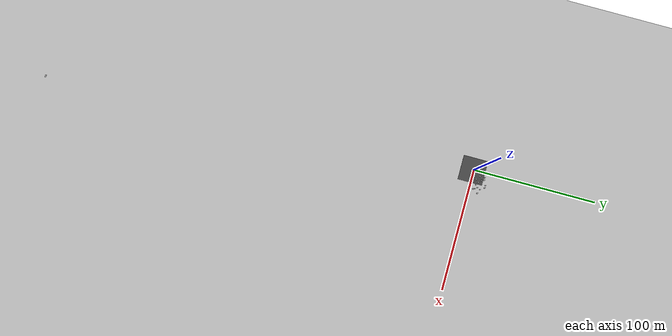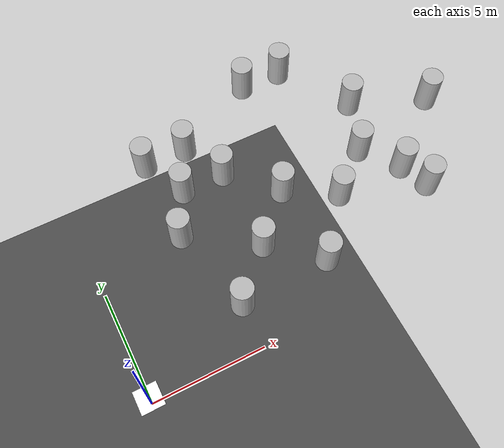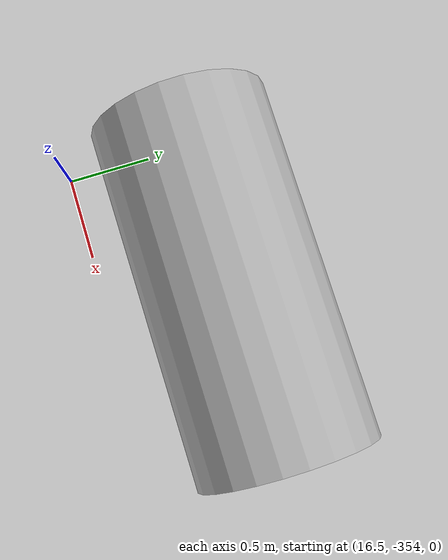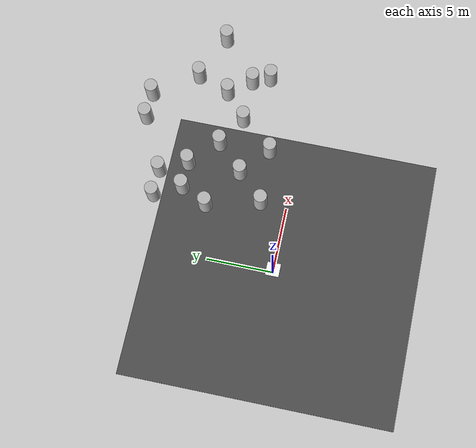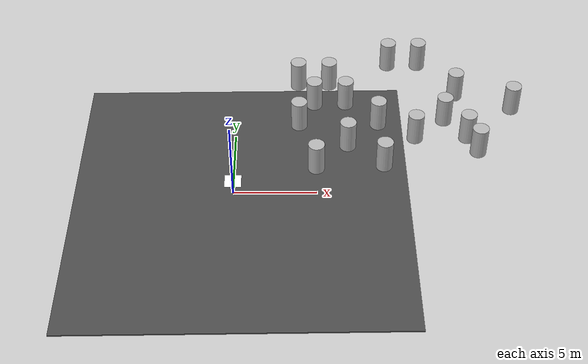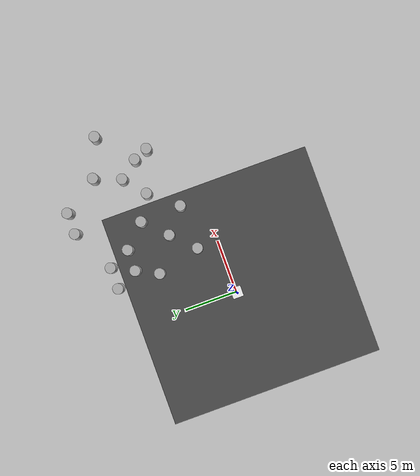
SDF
<sdf version="1.6">
 <world name="default">
  <model name="ground_plane">
   <static>1</static>
   <link name="link">
    <collision name="collision">
     <geometry><plane><normal>0 0 1</normal><size>100 100</size></plane></geometry>
     <surface><friction><ode><mu>100</mu><mu2>50</mu2></ode></friction></surface>
    </collision>
    <visual name="visual">
     <cast_shadows>0</cast_shadows>
     <geometry><plane><normal>0 0 1</normal><size>100 100</size></plane></geometry>
     <material>
      <script><uri>file://media/materials/scripts/gazebo.material</uri><name>Gazebo/Grey</name></script>
     </material>
    </visual>
   </link>
  </model>
  <physics name="default_physics" default="0" type="ode">
   <ode>
    <solver>
     <type>quick</type>
     <iters>10</iters>
     <sor>1.3</sor>
     <use_dynamic_moi_rescaling>0</use_dynamic_moi_rescaling>
    </solver>
    <constraints>
     <cfm>0</cfm>
     <erp>0.2</erp>
     <contact_max_correcting_vel>100</contact_max_correcting_vel>
     <contact_surface_layer>0.001</contact_surface_layer>
    </constraints>
   </ode>
   <max_step_size>0.004</max_step_size>
   <real_time_factor>1</real_time_factor>
   <real_time_update_rate>250</real_time_update_rate>
  </physics>
  <gravity>0 0 -9.8066</gravity>
  <magnetic_field>6e-06 2.3e-05 -4.2e-05</magnetic_field>
  <atmosphere type="adiabatic"/>
  <scene><ambient>0.4 0.4 0.4 1</ambient><background>0.7 0.7 0.7 1</background><shadows>1</shadows></scene>
  <spherical_coordinates>
   <surface_model>EARTH_WGS84</surface_model>
   <latitude_deg>0</latitude_deg>
   <longitude_deg>0</longitude_deg>
   <elevation>0</elevation>
   <heading_deg>0</heading_deg>
  </spherical_coordinates>
  <light name="user_directional_light_0" type="directional">
   <pose>0.540288 -0.667921 1 0 -0 0</pose>
   <diffuse>0.5 0.5 0.5 1</diffuse>
   <specular>0.1 0.1 0.1 1</specular>
   <direction>0.1 0.1 -0.9</direction>
   <attenuation>
    <range>20</range>
    <constant>0.5</constant>
    <linear>0.01</linear>
    <quadratic>0.001</quadratic>
   </attenuation>
  </light>
  <model name="asphalt_plane">
   <static>1</static>
   <link name="link">
    <collision name="collision"><geometry><box><size>20 19.9999 0.1</size></box></geometry></collision>
    <visual name="visual">
     <cast_shadows>0</cast_shadows>
     <geometry><box><size>20 19.9999 0.1</size></box></geometry>
     <material>
      <script>
       <uri>model://asphalt_plane/materials/scripts</uri>
       <uri>model://asphalt_plane/materials/textures</uri>
       <name>vrc/asphalt</name>
      </script>
     </material>
    </visual>
   </link>
   <pose>0.497562 -0.550879 0 0 -0 0</pose>
  </model>
  <model name="cylinder">
   <pose>6.99967 3.99982 1.05 -1.2e-05 1e-06 -0.000679</pose>
   <link name="link">
    <collision name="collision">
     <geometry><cylinder><radius>0.5</radius><length>2</length></cylinder></geometry>
    </collision>
    <visual name="visual">
     <geometry><cylinder><radius>0.5</radius><length>2</length></cylinder></geometry>
    </visual>
    <inertial>
     <inertia><ixx>1</ixx><ixy>0</ixy><ixz>0</ixz><iyy>1</iyy><iyz>0</iyz><izz>1</izz></inertia>
     <mass>1</mass>
    </inertial>
   </link>
  </model>
  <model name="cylinder1">
   <pose>6.99971 8.00004 1.05001 1.4e-05 2e-06 -0.001006</pose>
   <link name="link">
    <collision name="collision">
     <geometry><cylinder><radius>0.5</radius><length>2</length></cylinder></geometry>
    </collision>
    <visual name="visual">
     <geometry><cylinder><radius>0.5</radius><length>2</length></cylinder></geometry>
    </visual>
    <inertial>
     <inertia><ixx>1</ixx><ixy>0</ixy><ixz>0</ixz><iyy>1</iyy><iyz>0</iyz><izz>1</izz></inertia>
     <mass>1</mass>
    </inertial>
   </link>
  </model>
  <model name="cylinder2">
   <pose>4.9997 8.00005 1.04985 -1e-05 2.2e-05 -0.000999</pose>
   <link name="link">
    <collision name="collision">
     <geometry><cylinder><radius>0.5</radius><length>2</length></cylinder></geometry>
    </collision>
    <visual name="visual">
     <geometry><cylinder><radius>0.5</radius><length>2</length></cylinder></geometry>
    </visual>
    <inertial>
     <inertia><ixx>1</ixx><ixy>0</ixy><ixz>0</ixz><iyy>1</iyy><iyz>0</iyz><izz>1</izz></inertia>
     <mass>1</mass>
    </inertial>
   </link>
  </model>
  <model name="cylinder3">
   <pose>4.99954 1.99984 1.04984 -7e-06 1.4e-05 -0.000545</pose>
   <link name="link">
    <collision name="collision">
     <geometry><cylinder><radius>0.5</radius><length>2</length></cylinder></geometry>
    </collision>
    <visual name="visual">
     <geometry><cylinder><radius>0.5</radius><length>2</length></cylinder></geometry>
    </visual>
    <inertial>
     <inertia><ixx>1</ixx><ixy>0</ixy><ixz>0</ixz><iyy>1</iyy><iyz>0</iyz><izz>1</izz></inertia>
     <mass>1</mass>
    </inertial>
   </link>
  </model>
  <model name="cylinder4">
   <pose>3.99951 5.9999 1.05001 1.9e-05 -5e-06 -0.000532</pose>
   <link name="link">
    <collision name="collision">
     <geometry><cylinder><radius>0.5</radius><length>2</length></cylinder></geometry>
    </collision>
    <visual name="visual">
     <geometry><cylinder><radius>0.5</radius><length>2</length></cylinder></geometry>
    </visual>
    <inertial>
     <inertia><ixx>1</ixx><ixy>0</ixy><ixz>0</ixz><iyy>1</iyy><iyz>0</iyz><izz>1</izz></inertia>
     <mass>1</mass>
    </inertial>
   </link>
  </model>
  <model name="cylinder5">
   <pose>8.99967 5.99978 1.04989 1.3e-05 -1e-06 -0.001061</pose>
   <link name="link">
    <collision name="collision">
     <geometry><cylinder><radius>0.5</radius><length>2</length></cylinder></geometry>
    </collision>
    <visual name="visual">
     <geometry><cylinder><radius>0.5</radius><length>2</length></cylinder></geometry>
    </visual>
    <inertial>
     <inertia><ixx>1</ixx><ixy>0</ixy><ixz>0</ixz><iyy>1</iyy><iyz>0</iyz><izz>1</izz></inertia>
     <mass>1</mass>
    </inertial>
   </link>
  </model>
  <model name="cylinder6">
   <pose>3.99977 10.0001 1.05001 1.1e-05 1e-06 -0.001344</pose>
   <link name="link">
    <collision name="collision">
     <geometry><cylinder><radius>0.5</radius><length>2</length></cylinder></geometry>
    </collision>
    <visual name="visual">
     <geometry><cylinder><radius>0.5</radius><length>2</length></cylinder></geometry>
    </visual>
    <inertial>
     <inertia><ixx>1</ixx><ixy>0</ixy><ixz>0</ixz><iyy>1</iyy><iyz>0</iyz><izz>1</izz></inertia>
     <mass>1</mass>
    </inertial>
   </link>
  </model>
  <model name="cylinder7">
   <pose>5.99974 10.0001 1.04989 7e-06 -1e-06 -0.00114</pose>
   <link name="link">
    <collision name="collision">
     <geometry><cylinder><radius>0.5</radius><length>2</length></cylinder></geometry>
    </collision>
    <visual name="visual">
     <geometry><cylinder><radius>0.5</radius><length>2</length></cylinder></geometry>
    </visual>
    <inertial>
     <inertia><ixx>1</ixx><ixy>0</ixy><ixz>0</ixz><iyy>1</iyy><iyz>0</iyz><izz>1</izz></inertia>
     <mass>1</mass>
    </inertial>
   </link>
  </model>
  <model name="cylinder8">
   <pose>10 12 1.0499 1.4e-05 -2.2e-05 -0.002577</pose>
   <link name="link">
    <collision name="collision">
     <geometry><cylinder><radius>0.5</radius><length>2</length></cylinder></geometry>
    </collision>
    <visual name="visual">
     <geometry><cylinder><radius>0.5</radius><length>2</length></cylinder></geometry>
    </visual>
    <inertial>
     <inertia><ixx>1</ixx><ixy>0</ixy><ixz>0</ixz><iyy>1</iyy><iyz>0</iyz><izz>1</izz></inertia>
     <mass>1</mass>
    </inertial>
   </link>
  </model>
  <model name="cylinder9">
   <pose>12 11.9999 1.0499 1.1e-05 -2e-05 -0.002524</pose>
   <link name="link">
    <collision name="collision">
     <geometry><cylinder><radius>0.5</radius><length>2</length></cylinder></geometry>
    </collision>
    <visual name="visual">
     <geometry><cylinder><radius>0.5</radius><length>2</length></cylinder></geometry>
    </visual>
    <inertial>
     <inertia><ixx>1</ixx><ixy>0</ixy><ixz>0</ixz><iyy>1</iyy><iyz>0</iyz><izz>1</izz></inertia>
     <mass>1</mass>
    </inertial>
   </link>
  </model>
  <model name="aruco_visual_marker_0">
   <pose>0 0 1 0 -0 0</pose>
   <link name="marker">
    <pose>0 0 0 0 -0 3.14</pose>
    <visual name="visual">
     <geometry><box><size>1 1 1e-05</size></box></geometry>
     <material>
      <script>
       <uri>model://fractal_marker/materials/scripts</uri>
       <uri>model://fractal_marker/materials/textures</uri>
       <name>ArucoVisualMarker0</name>
      </script>
      <ambient>1 1 1 1</ambient>
      <diffuse>1 1 1 1</diffuse>
      <specular>0 0 0 1</specular>
      <emissive>1 1 1 0</emissive>
      <shader type="vertex"><normal_map>__default__</normal_map></shader>
     </material>
    </visual>
    <collision name="collision"><geometry><box><size>1 1 1e-05</size></box></geometry></collision>
   </link>
   <static>1</static>
  </model>
  <light name="user_directional_light_1" type="directional">
   <pose>18.7483 28.6467 1 0 -0 0</pose>
   <diffuse>0.5 0.5 0.5 1</diffuse>
   <specular>0.1 0.1 0.1 1</specular>
   <direction>0.1 0.1 -0.9</direction>
   <attenuation>
    <range>20</range>
    <constant>0.5</constant>
    <linear>0.01</linear>
    <quadratic>0.001</quadratic>
   </attenuation>
  </light>
  <audio><device>default</device></audio>
  <model name="cylinder5_clone">
   <pose>14.1719 8.75656 1.0499 1.9e-05 -1.1e-05 -0.002272</pose>
   <link name="link">
    <collision name="collision">
     <geometry><cylinder><radius>0.5</radius><length>2</length></cylinder></geometry>
    </collision>
    <visual name="visual">
     <geometry><cylinder><radius>0.5</radius><length>2</length></cylinder></geometry>
    </visual>
    <inertial>
     <inertia><ixx>1</ixx><ixy>0</ixy><ixz>0</ixz><iyy>1</iyy><iyz>0</iyz><izz>1</izz></inertia>
     <mass>1</mass>
    </inertial>
   </link>
  </model>
  <model name="cylinder5_clone_0">
   <pose>17.458 -353.264 0.499928 1.57072 0.102844 1.57823</pose>
   <link name="link">
    <collision name="collision">
     <geometry><cylinder><radius>0.5</radius><length>2</length></cylinder></geometry>
    </collision>
    <visual name="visual">
     <geometry><cylinder><radius>0.5</radius><length>2</length></cylinder></geometry>
    </visual>
    <inertial>
     <inertia><ixx>1</ixx><ixy>0</ixy><ixz>0</ixz><iyy>1</iyy><iyz>0</iyz><izz>1</izz></inertia>
     <mass>1</mass>
    </inertial>
   </link>
  </model>
  <model name="cylinder5_clone_1">
   <pose>11.2506 4.64444 1.0499 -7e-06 -1.8e-05 -0.00254</pose>
   <link name="link">
    <collision name="collision">
     <geometry><cylinder><radius>0.5</radius><length>2</length></cylinder></geometry>
    </collision>
    <visual name="visual">
     <geometry><cylinder><radius>0.5</radius><length>2</length></cylinder></geometry>
    </visual>
    <inertial>
     <inertia><ixx>1</ixx><ixy>0</ixy><ixz>0</ixz><iyy>1</iyy><iyz>0</iyz><izz>1</izz></inertia>
     <mass>1</mass>
    </inertial>
   </link>
  </model>
  <model name="cylinder5_clone_2">
   <pose>9.15629 2.15595 1.0499 -1e-05 -1.5e-05 -0.000906</pose>
   <link name="link">
    <collision name="collision">
     <geometry><cylinder><radius>0.5</radius><length>2</length></cylinder></geometry>
    </collision>
    <visual name="visual">
     <geometry><cylinder><radius>0.5</radius><length>2</length></cylinder></geometry>
    </visual>
    <inertial>
     <inertia><ixx>1</ixx><ixy>0</ixy><ixz>0</ixz><iyy>1</iyy><iyz>0</iyz><izz>1</izz></inertia>
     <mass>1</mass>
    </inertial>
   </link>
  </model>
  <model name="cylinder5_clone_3">
   <pose>13.2204 6.2928 1.0499 1.9e-05 -1.1e-05 -0.001878</pose>
   <link name="link">
    <collision name="collision">
     <geometry><cylinder><radius>0.5</radius><length>2</length></cylinder></geometry>
    </collision>
    <visual name="visual">
     <geometry><cylinder><radius>0.5</radius><length>2</length></cylinder></geometry>
    </visual>
    <inertial>
     <inertia><ixx>1</ixx><ixy>0</ixy><ixz>0</ixz><iyy>1</iyy><iyz>0</iyz><izz>1</izz></inertia>
     <mass>1</mass>
    </inertial>
   </link>
  </model>
  <model name="cylinder5_clone_4">
   <pose>17.6857 7.33835 1.0499 1.5e-05 -2.6e-05 0.00463</pose>
   <link name="link">
    <collision name="collision">
     <geometry><cylinder><radius>0.5</radius><length>2</length></cylinder></geometry>
    </collision>
    <visual name="visual">
     <geometry><cylinder><radius>0.5</radius><length>2</length></cylinder></geometry>
    </visual>
    <inertial>
     <inertia><ixx>1</ixx><ixy>0</ixy><ixz>0</ixz><iyy>1</iyy><iyz>0</iyz><izz>1</izz></inertia>
     <mass>1</mass>
    </inertial>
   </link>
  </model>
  <model name="cylinder5_clone_5">
   <pose>15.0683 3.29385 1.0499 2.2e-05 -1.5e-05 -0.001532</pose>
   <link name="link">
    <collision name="collision">
     <geometry><cylinder><radius>0.5</radius><length>2</length></cylinder></geometry>
    </collision>
    <visual name="visual">
     <geometry><cylinder><radius>0.5</radius><length>2</length></cylinder></geometry>
    </visual>
    <inertial>
     <inertia><ixx>1</ixx><ixy>0</ixy><ixz>0</ixz><iyy>1</iyy><iyz>0</iyz><izz>1</izz></inertia>
     <mass>1</mass>
    </inertial>
   </link>
  </model>
  <model name="cylinder5_clone_6">
   <pose>14.5131 4.61298 1.05001 -9e-06 -2.5e-05 -0.000881</pose>
   <link name="link">
    <collision name="collision">
     <geometry><cylinder><radius>0.5</radius><length>2</length></cylinder></geometry>
    </collision>
    <visual name="visual">
     <geometry><cylinder><radius>0.5</radius><length>2</length></cylinder></geometry>
    </visual>
    <inertial>
     <inertia><ixx>1</ixx><ixy>0</ixy><ixz>0</ixz><iyy>1</iyy><iyz>0</iyz><izz>1</izz></inertia>
     <mass>1</mass>
    </inertial>
   </link>
  </model>
 </world>
</sdf>
